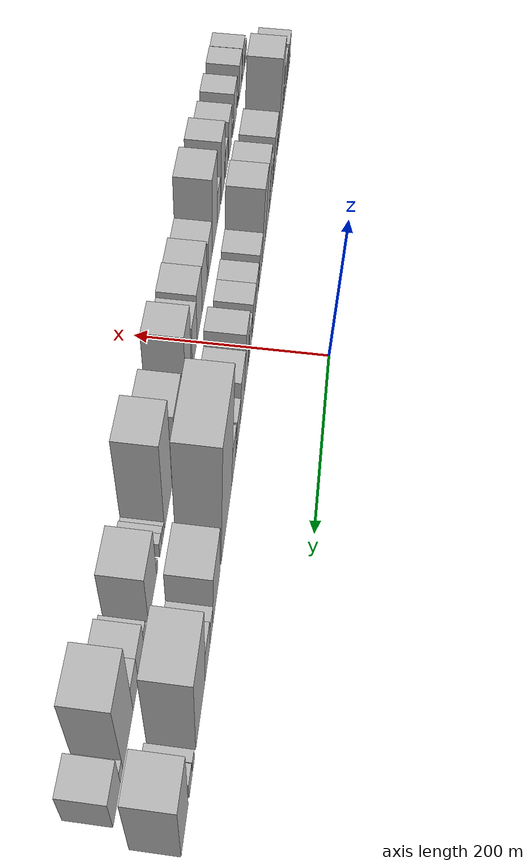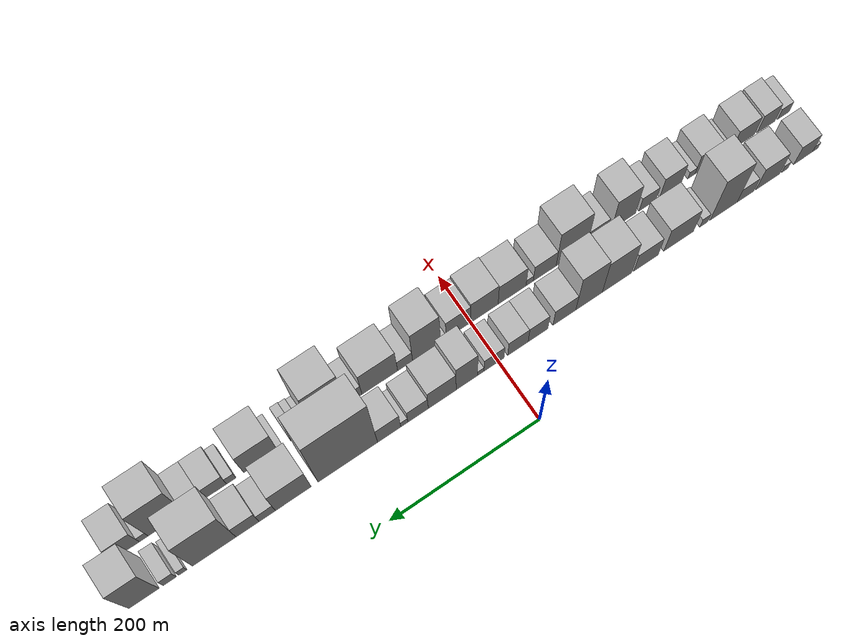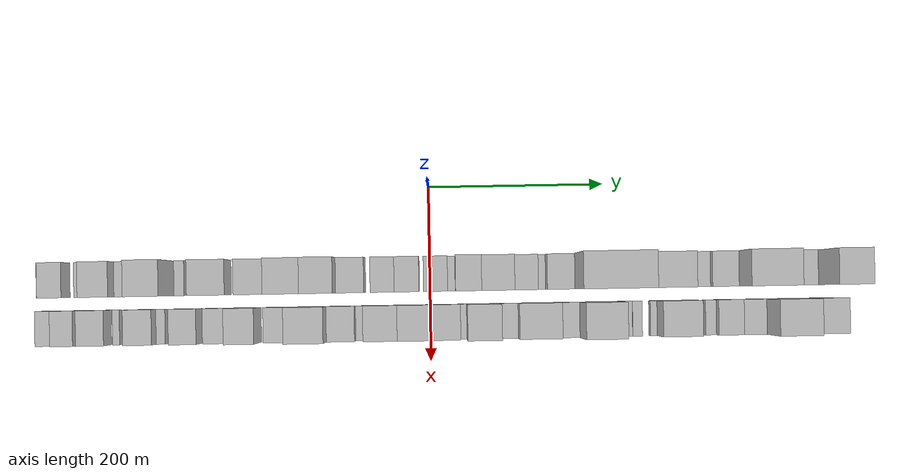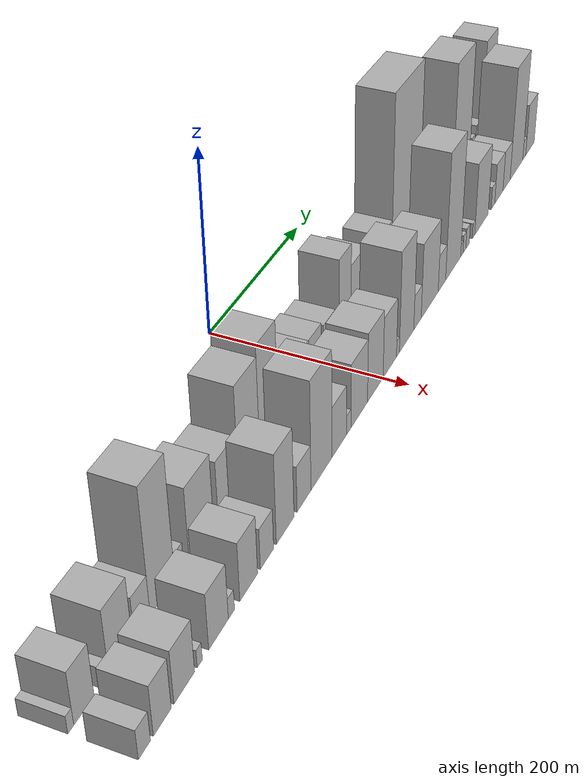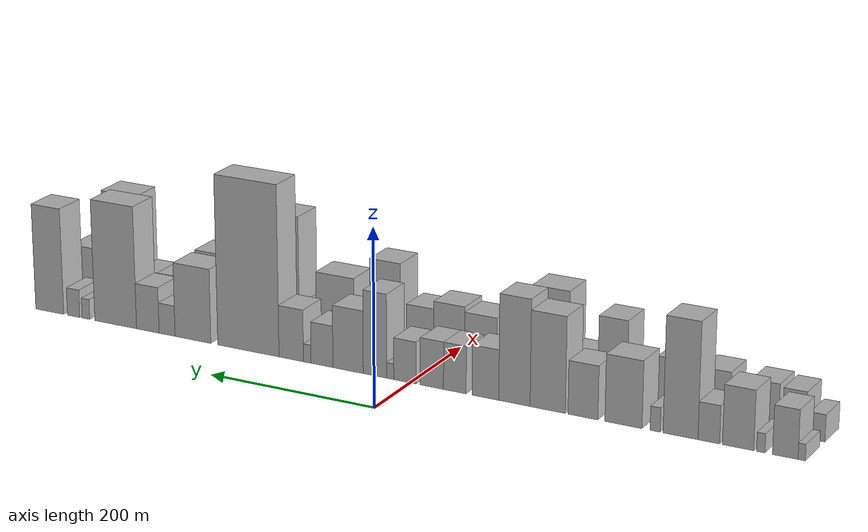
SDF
<sdf version="1.6">
 <world name="default">
  <scene>
   <sky><clouds><speed>12</speed></clouds></sky>
   <ambient>0.4 0.4 0.4 1</ambient>
   <background>0.7 0.7 0.7 1</background>
   <shadows>1</shadows>
  </scene>
  <gravity>0 0 -9.8066</gravity>
  <magnetic_field>6e-06 2.3e-05 -4.2e-05</magnetic_field>
  <physics default="0" name="default_physics" type="ode">
   <ode>
    <solver>
     <type>quick</type>
     <iters>10</iters>
     <sor>1.0</sor>
     <use_dynamic_moi_rescaling>0</use_dynamic_moi_rescaling>
    </solver>
    <constraints>
     <cfm>0</cfm>
     <erp>0.2</erp>
     <contact_max_correcting_vel>100</contact_max_correcting_vel>
     <contact_surface_layer>0.001</contact_surface_layer>
    </constraints>
   </ode>
   <max_step_size>0.004</max_step_size>
   <real_time_factor>1</real_time_factor>
   <real_time_update_rate>250</real_time_update_rate>
  </physics>
  <light name="sun" type="directional">
   <pose>0 0 10 0 0 0</pose>
   <diffuse>0.8 0.8 0.8 1</diffuse>
   <specular>0.2 0.2 0.2 1</specular>
   <attenuation>
    <range>1000</range>
    <constant>0.9</constant>
    <linear>0.01</linear>
    <quadratic>0.001</quadratic>
   </attenuation>
   <direction>-0.5 0.1 -0.9</direction>
  </light>
  <model name="building_1">
   <static>1</static>
   <pose>100.0000 -446.0445 0 0.000000 0.000000 0.000000</pose>
   <link name="link">
    <pose>0 0 9.00 0 0 0</pose>
    <collision name="collision"><geometry><box><size>40.0000 7.9111 18.0000</size></box></geometry></collision>
    <visual name="visual">
     <cast_shadows>0</cast_shadows>
     <geometry><box><size>40.0000 7.9111 18.0000</size></box></geometry>
     <material>
      <script>
       <uri>model://HANNAS_wall/materials/scripts</uri>
       <uri>model://HANNAS_wall/materials/textures</uri>
       <name>vrc/HANNAS_wall</name>
      </script>
     </material>
    </visual>
   </link>
  </model>
  <model name="building_2">
   <static>1</static>
   <pose>100.0000 -428.3742 0 0.000000 0.000000 0.000000</pose>
   <link name="link">
    <pose>0 0 27.00 0 0 0</pose>
    <collision name="collision"><geometry><box><size>40.0000 27.4295 54.0000</size></box></geometry></collision>
    <visual name="visual">
     <cast_shadows>0</cast_shadows>
     <geometry><box><size>40.0000 27.4295 54.0000</size></box></geometry>
     <material>
      <script>
       <uri>model://HANNAS_wall/materials/scripts</uri>
       <uri>model://HANNAS_wall/materials/textures</uri>
       <name>vrc/HANNAS_wall</name>
      </script>
     </material>
    </visual>
   </link>
  </model>
  <model name="building_3">
   <static>1</static>
   <pose>100.0000 -402.0157 0 0.000000 0.000000 0.000000</pose>
   <link name="link">
    <pose>0 0 10.50 0 0 0</pose>
    <collision name="collision"><geometry><box><size>40.0000 9.2875 21.0000</size></box></geometry></collision>
    <visual name="visual">
     <cast_shadows>0</cast_shadows>
     <geometry><box><size>40.0000 9.2875 21.0000</size></box></geometry>
     <material>
      <script>
       <uri>model://HANNAS_wall/materials/scripts</uri>
       <uri>model://HANNAS_wall/materials/textures</uri>
       <name>vrc/HANNAS_wall</name>
      </script>
     </material>
    </visual>
   </link>
  </model>
  <model name="building_4">
   <static>1</static>
   <pose>100.0000 -377.2498 0 0.000000 0.000000 0.000000</pose>
   <link name="link">
    <pose>0 0 33.00 0 0 0</pose>
    <collision name="collision"><geometry><box><size>40.0000 34.2443 66.0000</size></box></geometry></collision>
    <visual name="visual">
     <cast_shadows>0</cast_shadows>
     <geometry><box><size>40.0000 34.2443 66.0000</size></box></geometry>
     <material>
      <script>
       <uri>model://HANNAS_wall/materials/scripts</uri>
       <uri>model://HANNAS_wall/materials/textures</uri>
       <name>vrc/HANNAS_wall</name>
      </script>
     </material>
    </visual>
   </link>
  </model>
  <model name="building_5">
   <static>1</static>
   <pose>100.0000 -345.1877 0 0.000000 0.000000 0.000000</pose>
   <link name="link">
    <pose>0 0 21.00 0 0 0</pose>
    <collision name="collision"><geometry><box><size>40.0000 23.8799 42.0000</size></box></geometry></collision>
    <visual name="visual">
     <cast_shadows>0</cast_shadows>
     <geometry><box><size>40.0000 23.8799 42.0000</size></box></geometry>
     <material>
      <script>
       <uri>model://HANNAS_wall/materials/scripts</uri>
       <uri>model://HANNAS_wall/materials/textures</uri>
       <name>vrc/HANNAS_wall</name>
      </script>
     </material>
    </visual>
   </link>
  </model>
  <model name="building_6">
   <static>1</static>
   <pose>100.0000 -313.8028 0 0.000000 0.000000 0.000000</pose>
   <link name="link">
    <pose>0 0 64.50 0 0 0</pose>
    <collision name="collision"><geometry><box><size>40.0000 38.8897 129.0000</size></box></geometry></collision>
    <visual name="visual">
     <cast_shadows>0</cast_shadows>
     <geometry><box><size>40.0000 38.8897 129.0000</size></box></geometry>
     <material>
      <script>
       <uri>model://HANNAS_wall/materials/scripts</uri>
       <uri>model://HANNAS_wall/materials/textures</uri>
       <name>vrc/HANNAS_wall</name>
      </script>
     </material>
    </visual>
   </link>
  </model>
  <model name="building_7">
   <static>1</static>
   <pose>100.0000 -285.6322 0 0.000000 0.000000 0.000000</pose>
   <link name="link">
    <pose>0 0 13.50 0 0 0</pose>
    <collision name="collision"><geometry><box><size>40.0000 11.4515 27.0000</size></box></geometry></collision>
    <visual name="visual">
     <cast_shadows>0</cast_shadows>
     <geometry><box><size>40.0000 11.4515 27.0000</size></box></geometry>
     <material>
      <script>
       <uri>model://HANNAS_wall/materials/scripts</uri>
       <uri>model://HANNAS_wall/materials/textures</uri>
       <name>vrc/HANNAS_wall</name>
      </script>
     </material>
    </visual>
   </link>
  </model>
  <model name="building_8">
   <static>1</static>
   <pose>100.0000 -249.8917 0 0.000000 0.000000 0.000000</pose>
   <link name="link">
    <pose>0 0 37.50 0 0 0</pose>
    <collision name="collision"><geometry><box><size>40.0000 42.0296 75.0000</size></box></geometry></collision>
    <visual name="visual">
     <cast_shadows>0</cast_shadows>
     <geometry><box><size>40.0000 42.0296 75.0000</size></box></geometry>
     <material>
      <script>
       <uri>model://HANNAS_wall/materials/scripts</uri>
       <uri>model://HANNAS_wall/materials/textures</uri>
       <name>vrc/HANNAS_wall</name>
      </script>
     </material>
    </visual>
   </link>
  </model>
  <model name="building_9">
   <static>1</static>
   <pose>100.0000 -203.7269 0 0.000000 0.000000 0.000000</pose>
   <link name="link">
    <pose>0 0 30.00 0 0 0</pose>
    <collision name="collision"><geometry><box><size>40.0000 34.3001 60.0000</size></box></geometry></collision>
    <visual name="visual">
     <cast_shadows>0</cast_shadows>
     <geometry><box><size>40.0000 34.3001 60.0000</size></box></geometry>
     <material>
      <script>
       <uri>model://HANNAS_wall/materials/scripts</uri>
       <uri>model://HANNAS_wall/materials/textures</uri>
       <name>vrc/HANNAS_wall</name>
      </script>
     </material>
    </visual>
   </link>
  </model>
  <model name="building_10">
   <static>1</static>
   <pose>100.0000 -163.1283 0 0.000000 0.000000 0.000000</pose>
   <link name="link">
    <pose>0 0 54.00 0 0 0</pose>
    <collision name="collision"><geometry><box><size>40.0000 40.8971 108.0000</size></box></geometry></collision>
    <visual name="visual">
     <cast_shadows>0</cast_shadows>
     <geometry><box><size>40.0000 40.8971 108.0000</size></box></geometry>
     <material>
      <script>
       <uri>model://HANNAS_wall/materials/scripts</uri>
       <uri>model://HANNAS_wall/materials/textures</uri>
       <name>vrc/HANNAS_wall</name>
      </script>
     </material>
    </visual>
   </link>
  </model>
  <model name="building_11">
   <static>1</static>
   <pose>100.0000 -124.2831 0 0.000000 0.000000 0.000000</pose>
   <link name="link">
    <pose>0 0 60.00 0 0 0</pose>
    <collision name="collision"><geometry><box><size>40.0000 36.7932 120.0000</size></box></geometry></collision>
    <visual name="visual">
     <cast_shadows>0</cast_shadows>
     <geometry><box><size>40.0000 36.7932 120.0000</size></box></geometry>
     <material>
      <script>
       <uri>model://HANNAS_wall/materials/scripts</uri>
       <uri>model://HANNAS_wall/materials/textures</uri>
       <name>vrc/HANNAS_wall</name>
      </script>
     </material>
    </visual>
   </link>
  </model>
  <model name="building_12">
   <static>1</static>
   <pose>100.0000 -90.0963 0 0.000000 0.000000 0.000000</pose>
   <link name="link">
    <pose>0 0 28.50 0 0 0</pose>
    <collision name="collision"><geometry><box><size>40.0000 31.5804 57.0000</size></box></geometry></collision>
    <visual name="visual">
     <cast_shadows>0</cast_shadows>
     <geometry><box><size>40.0000 31.5804 57.0000</size></box></geometry>
     <material>
      <script>
       <uri>model://HANNAS_wall/materials/scripts</uri>
       <uri>model://HANNAS_wall/materials/textures</uri>
       <name>vrc/HANNAS_wall</name>
      </script>
     </material>
    </visual>
   </link>
  </model>
  <model name="building_13">
   <static>1</static>
   <pose>100.0000 -53.7954 0 0.000000 0.000000 0.000000</pose>
   <link name="link">
    <pose>0 0 27.00 0 0 0</pose>
    <collision name="collision"><geometry><box><size>40.0000 27.0213 54.0000</size></box></geometry></collision>
    <visual name="visual">
     <cast_shadows>0</cast_shadows>
     <geometry><box><size>40.0000 27.0213 54.0000</size></box></geometry>
     <material>
      <script>
       <uri>model://HANNAS_wall/materials/scripts</uri>
       <uri>model://HANNAS_wall/materials/textures</uri>
       <name>vrc/HANNAS_wall</name>
      </script>
     </material>
    </visual>
   </link>
  </model>
  <model name="building_14">
   <static>1</static>
   <pose>100.0000 -26.3035 0 0.000000 0.000000 0.000000</pose>
   <link name="link">
    <pose>0 0 27.00 0 0 0</pose>
    <collision name="collision"><geometry><box><size>40.0000 27.9625 54.0000</size></box></geometry></collision>
    <visual name="visual">
     <cast_shadows>0</cast_shadows>
     <geometry><box><size>40.0000 27.9625 54.0000</size></box></geometry>
     <material>
      <script>
       <uri>model://HANNAS_wall/materials/scripts</uri>
       <uri>model://HANNAS_wall/materials/textures</uri>
       <name>vrc/HANNAS_wall</name>
      </script>
     </material>
    </visual>
   </link>
  </model>
  <model name="building_15">
   <static>1</static>
   <pose>100.0000 6.3025 0 0.000000 0.000000 0.000000</pose>
   <link name="link">
    <pose>0 0 24.00 0 0 0</pose>
    <collision name="collision"><geometry><box><size>40.0000 27.2494 48.0000</size></box></geometry></collision>
    <visual name="visual">
     <cast_shadows>0</cast_shadows>
     <geometry><box><size>40.0000 27.2494 48.0000</size></box></geometry>
     <material>
      <script>
       <uri>model://HANNAS_wall/materials/scripts</uri>
       <uri>model://HANNAS_wall/materials/textures</uri>
       <name>vrc/HANNAS_wall</name>
      </script>
     </material>
    </visual>
   </link>
  </model>
  <model name="building_16">
   <static>1</static>
   <pose>100.0000 24.2655 0 0.000000 0.000000 0.000000</pose>
   <link name="link">
    <pose>0 0 9.00 0 0 0</pose>
    <collision name="collision"><geometry><box><size>40.0000 8.6766 18.0000</size></box></geometry></collision>
    <visual name="visual">
     <cast_shadows>0</cast_shadows>
     <geometry><box><size>40.0000 8.6766 18.0000</size></box></geometry>
     <material>
      <script>
       <uri>model://HANNAS_wall/materials/scripts</uri>
       <uri>model://HANNAS_wall/materials/textures</uri>
       <name>vrc/HANNAS_wall</name>
      </script>
     </material>
    </visual>
   </link>
  </model>
  <model name="building_17">
   <static>1</static>
   <pose>100.0000 43.0093 0 0.000000 0.000000 0.000000</pose>
   <link name="link">
    <pose>0 0 48.00 0 0 0</pose>
    <collision name="collision"><geometry><box><size>40.0000 28.8110 96.0000</size></box></geometry></collision>
    <visual name="visual">
     <cast_shadows>0</cast_shadows>
     <geometry><box><size>40.0000 28.8110 96.0000</size></box></geometry>
     <material>
      <script>
       <uri>model://HANNAS_wall/materials/scripts</uri>
       <uri>model://HANNAS_wall/materials/textures</uri>
       <name>vrc/HANNAS_wall</name>
      </script>
     </material>
    </visual>
   </link>
  </model>
  <model name="building_18">
   <static>1</static>
   <pose>100.0000 76.1650 0 0.000000 0.000000 0.000000</pose>
   <link name="link">
    <pose>0 0 36.00 0 0 0</pose>
    <collision name="collision"><geometry><box><size>40.0000 37.5004 72.0000</size></box></geometry></collision>
    <visual name="visual">
     <cast_shadows>0</cast_shadows>
     <geometry><box><size>40.0000 37.5004 72.0000</size></box></geometry>
     <material>
      <script>
       <uri>model://HANNAS_wall/materials/scripts</uri>
       <uri>model://HANNAS_wall/materials/textures</uri>
       <name>vrc/HANNAS_wall</name>
      </script>
     </material>
    </visual>
   </link>
  </model>
  <model name="building_19">
   <static>1</static>
   <pose>100.0000 108.5897 0 0.000000 0.000000 0.000000</pose>
   <link name="link">
    <pose>0 0 24.00 0 0 0</pose>
    <collision name="collision"><geometry><box><size>40.0000 27.3489 48.0000</size></box></geometry></collision>
    <visual name="visual">
     <cast_shadows>0</cast_shadows>
     <geometry><box><size>40.0000 27.3489 48.0000</size></box></geometry>
     <material>
      <script>
       <uri>model://HANNAS_wall/materials/scripts</uri>
       <uri>model://HANNAS_wall/materials/textures</uri>
       <name>vrc/HANNAS_wall</name>
      </script>
     </material>
    </visual>
   </link>
  </model>
  <model name="building_20">
   <static>1</static>
   <pose>100.0000 126.9915 0 0.000000 0.000000 0.000000</pose>
   <link name="link">
    <pose>0 0 10.50 0 0 0</pose>
    <collision name="collision"><geometry><box><size>40.0000 9.4548 21.0000</size></box></geometry></collision>
    <visual name="visual">
     <cast_shadows>0</cast_shadows>
     <geometry><box><size>40.0000 9.4548 21.0000</size></box></geometry>
     <material>
      <script>
       <uri>model://HANNAS_wall/materials/scripts</uri>
       <uri>model://HANNAS_wall/materials/textures</uri>
       <name>vrc/HANNAS_wall</name>
      </script>
     </material>
    </visual>
   </link>
  </model>
  <model name="building_21">
   <static>1</static>
   <pose>100.0000 147.1534 0 0.000000 0.000000 0.000000</pose>
   <link name="link">
    <pose>0 0 30.00 0 0 0</pose>
    <collision name="collision"><geometry><box><size>40.0000 30.8690 60.0000</size></box></geometry></collision>
    <visual name="visual">
     <cast_shadows>0</cast_shadows>
     <geometry><box><size>40.0000 30.8690 60.0000</size></box></geometry>
     <material>
      <script>
       <uri>model://HANNAS_wall/materials/scripts</uri>
       <uri>model://HANNAS_wall/materials/textures</uri>
       <name>vrc/HANNAS_wall</name>
      </script>
     </material>
    </visual>
   </link>
  </model>
  <model name="building_22">
   <static>1</static>
   <pose>100.0000 201.8062 0 0.000000 0.000000 0.000000</pose>
   <link name="link">
    <pose>0 0 99.00 0 0 0</pose>
    <collision name="collision"><geometry><box><size>40.0000 78.4366 198.0000</size></box></geometry></collision>
    <visual name="visual">
     <cast_shadows>0</cast_shadows>
     <geometry><box><size>40.0000 78.4366 198.0000</size></box></geometry>
     <material>
      <script>
       <uri>model://HANNAS_wall/materials/scripts</uri>
       <uri>model://HANNAS_wall/materials/textures</uri>
       <name>vrc/HANNAS_wall</name>
      </script>
     </material>
    </visual>
   </link>
  </model>
  <model name="building_23">
   <static>1</static>
   <pose>100.0000 273.3668 0 0.000000 0.000000 0.000000</pose>
   <link name="link">
    <pose>0 0 43.50 0 0 0</pose>
    <collision name="collision"><geometry><box><size>40.0000 46.6846 87.0000</size></box></geometry></collision>
    <visual name="visual">
     <cast_shadows>0</cast_shadows>
     <geometry><box><size>40.0000 46.6846 87.0000</size></box></geometry>
     <material>
      <script>
       <uri>model://HANNAS_wall/materials/scripts</uri>
       <uri>model://HANNAS_wall/materials/textures</uri>
       <name>vrc/HANNAS_wall</name>
      </script>
     </material>
    </visual>
   </link>
  </model>
  <model name="building_24">
   <static>1</static>
   <pose>100.0000 307.2393 0 0.000000 0.000000 0.000000</pose>
   <link name="link">
    <pose>0 0 18.00 0 0 0</pose>
    <collision name="collision"><geometry><box><size>40.0000 21.0604 36.0000</size></box></geometry></collision>
    <visual name="visual">
     <cast_shadows>0</cast_shadows>
     <geometry><box><size>40.0000 21.0604 36.0000</size></box></geometry>
     <material>
      <script>
       <uri>model://HANNAS_wall/materials/scripts</uri>
       <uri>model://HANNAS_wall/materials/textures</uri>
       <name>vrc/HANNAS_wall</name>
      </script>
     </material>
    </visual>
   </link>
  </model>
  <model name="building_25">
   <static>1</static>
   <pose>100.0000 332.6892 0 0.000000 0.000000 0.000000</pose>
   <link name="link">
    <pose>0 0 27.00 0 0 0</pose>
    <collision name="collision"><geometry><box><size>40.0000 29.8393 54.0000</size></box></geometry></collision>
    <visual name="visual">
     <cast_shadows>0</cast_shadows>
     <geometry><box><size>40.0000 29.8393 54.0000</size></box></geometry>
     <material>
      <script>
       <uri>model://HANNAS_wall/materials/scripts</uri>
       <uri>model://HANNAS_wall/materials/textures</uri>
       <name>vrc/HANNAS_wall</name>
      </script>
     </material>
    </visual>
   </link>
  </model>
  <model name="building_26">
   <static>1</static>
   <pose>100.0000 375.5573 0 0.000000 0.000000 0.000000</pose>
   <link name="link">
    <pose>0 0 72.00 0 0 0</pose>
    <collision name="collision"><geometry><box><size>40.0000 55.8970 144.0000</size></box></geometry></collision>
    <visual name="visual">
     <cast_shadows>0</cast_shadows>
     <geometry><box><size>40.0000 55.8970 144.0000</size></box></geometry>
     <material>
      <script>
       <uri>model://HANNAS_wall/materials/scripts</uri>
       <uri>model://HANNAS_wall/materials/textures</uri>
       <name>vrc/HANNAS_wall</name>
      </script>
     </material>
    </visual>
   </link>
  </model>
  <model name="building_27">
   <static>1</static>
   <pose>100.0000 415.6739 0 0.000000 0.000000 0.000000</pose>
   <link name="link">
    <pose>0 0 12.00 0 0 0</pose>
    <collision name="collision"><geometry><box><size>40.0000 10.3362 24.0000</size></box></geometry></collision>
    <visual name="visual">
     <cast_shadows>0</cast_shadows>
     <geometry><box><size>40.0000 10.3362 24.0000</size></box></geometry>
     <material>
      <script>
       <uri>model://HANNAS_wall/materials/scripts</uri>
       <uri>model://HANNAS_wall/materials/textures</uri>
       <name>vrc/HANNAS_wall</name>
      </script>
     </material>
    </visual>
   </link>
  </model>
  <model name="building_28">
   <static>1</static>
   <pose>100.0000 432.2948 0 0.000000 0.000000 0.000000</pose>
   <link name="link">
    <pose>0 0 16.50 0 0 0</pose>
    <collision name="collision"><geometry><box><size>40.0000 16.9056 33.0000</size></box></geometry></collision>
    <visual name="visual">
     <cast_shadows>0</cast_shadows>
     <geometry><box><size>40.0000 16.9056 33.0000</size></box></geometry>
     <material>
      <script>
       <uri>model://HANNAS_wall/materials/scripts</uri>
       <uri>model://HANNAS_wall/materials/textures</uri>
       <name>vrc/HANNAS_wall</name>
      </script>
     </material>
    </visual>
   </link>
  </model>
  <model name="building_29">
   <static>1</static>
   <pose>100.0000 464.8829 0 0.000000 0.000000 0.000000</pose>
   <link name="link">
    <pose>0 0 63.00 0 0 0</pose>
    <collision name="collision"><geometry><box><size>40.0000 38.2706 126.0000</size></box></geometry></collision>
    <visual name="visual">
     <cast_shadows>0</cast_shadows>
     <geometry><box><size>40.0000 38.2706 126.0000</size></box></geometry>
     <material>
      <script>
       <uri>model://HANNAS_wall/materials/scripts</uri>
       <uri>model://HANNAS_wall/materials/textures</uri>
       <name>vrc/HANNAS_wall</name>
      </script>
     </material>
    </visual>
   </link>
  </model>
  <model name="building_30">
   <static>1</static>
   <pose>155.0000 -441.4879 0 0.000000 0.000000 0.000000</pose>
   <link name="link">
    <pose>0 0 15.00 0 0 0</pose>
    <collision name="collision"><geometry><box><size>40.0000 17.0242 30.0000</size></box></geometry></collision>
    <visual name="visual">
     <cast_shadows>0</cast_shadows>
     <geometry><box><size>40.0000 17.0242 30.0000</size></box></geometry>
     <material>
      <script>
       <uri>model://HANNAS_wall/materials/scripts</uri>
       <uri>model://HANNAS_wall/materials/textures</uri>
       <name>vrc/HANNAS_wall</name>
      </script>
     </material>
    </visual>
   </link>
  </model>
  <model name="building_31">
   <static>1</static>
   <pose>155.0000 -416.0695 0 0.000000 0.000000 0.000000</pose>
   <link name="link">
    <pose>0 0 25.50 0 0 0</pose>
    <collision name="collision"><geometry><box><size>40.0000 25.8125 51.0000</size></box></geometry></collision>
    <visual name="visual">
     <cast_shadows>0</cast_shadows>
     <geometry><box><size>40.0000 25.8125 51.0000</size></box></geometry>
     <material>
      <script>
       <uri>model://HANNAS_wall/materials/scripts</uri>
       <uri>model://HANNAS_wall/materials/textures</uri>
       <name>vrc/HANNAS_wall</name>
      </script>
     </material>
    </visual>
   </link>
  </model>
  <model name="building_32">
   <static>1</static>
   <pose>155.0000 -383.4789 0 0.000000 0.000000 0.000000</pose>
   <link name="link">
    <pose>0 0 27.00 0 0 0</pose>
    <collision name="collision"><geometry><box><size>40.0000 31.3688 54.0000</size></box></geometry></collision>
    <visual name="visual">
     <cast_shadows>0</cast_shadows>
     <geometry><box><size>40.0000 31.3688 54.0000</size></box></geometry>
     <material>
      <script>
       <uri>model://HANNAS_wall/materials/scripts</uri>
       <uri>model://HANNAS_wall/materials/textures</uri>
       <name>vrc/HANNAS_wall</name>
      </script>
     </material>
    </visual>
   </link>
  </model>
  <model name="building_33">
   <static>1</static>
   <pose>155.0000 -359.7463 0 0.000000 0.000000 0.000000</pose>
   <link name="link">
    <pose>0 0 9.00 0 0 0</pose>
    <collision name="collision"><geometry><box><size>40.0000 8.0962 18.0000</size></box></geometry></collision>
    <visual name="visual">
     <cast_shadows>0</cast_shadows>
     <geometry><box><size>40.0000 8.0962 18.0000</size></box></geometry>
     <material>
      <script>
       <uri>model://HANNAS_wall/materials/scripts</uri>
       <uri>model://HANNAS_wall/materials/textures</uri>
       <name>vrc/HANNAS_wall</name>
      </script>
     </material>
    </visual>
   </link>
  </model>
  <model name="building_34">
   <static>1</static>
   <pose>155.0000 -329.5997 0 0.000000 0.000000 0.000000</pose>
   <link name="link">
    <pose>0 0 28.50 0 0 0</pose>
    <collision name="collision"><geometry><box><size>40.0000 32.1970 57.0000</size></box></geometry></collision>
    <visual name="visual">
     <cast_shadows>0</cast_shadows>
     <geometry><box><size>40.0000 32.1970 57.0000</size></box></geometry>
     <material>
      <script>
       <uri>model://HANNAS_wall/materials/scripts</uri>
       <uri>model://HANNAS_wall/materials/textures</uri>
       <name>vrc/HANNAS_wall</name>
      </script>
     </material>
    </visual>
   </link>
  </model>
  <model name="building_35">
   <static>1</static>
   <pose>155.0000 -308.3166 0 0.000000 0.000000 0.000000</pose>
   <link name="link">
    <pose>0 0 10.50 0 0 0</pose>
    <collision name="collision"><geometry><box><size>40.0000 10.3693 21.0000</size></box></geometry></collision>
    <visual name="visual">
     <cast_shadows>0</cast_shadows>
     <geometry><box><size>40.0000 10.3693 21.0000</size></box></geometry>
     <material>
      <script>
       <uri>model://HANNAS_wall/materials/scripts</uri>
       <uri>model://HANNAS_wall/materials/textures</uri>
       <name>vrc/HANNAS_wall</name>
      </script>
     </material>
    </visual>
   </link>
  </model>
  <model name="building_36">
   <static>1</static>
   <pose>155.0000 -278.6111 0 0.000000 0.000000 0.000000</pose>
   <link name="link">
    <pose>0 0 30.00 0 0 0</pose>
    <collision name="collision"><geometry><box><size>40.0000 31.0417 60.0000</size></box></geometry></collision>
    <visual name="visual">
     <cast_shadows>0</cast_shadows>
     <geometry><box><size>40.0000 31.0417 60.0000</size></box></geometry>
     <material>
      <script>
       <uri>model://HANNAS_wall/materials/scripts</uri>
       <uri>model://HANNAS_wall/materials/textures</uri>
       <name>vrc/HANNAS_wall</name>
      </script>
     </material>
    </visual>
   </link>
  </model>
  <model name="building_37">
   <static>1</static>
   <pose>155.0000 -245.9756 0 0.000000 0.000000 0.000000</pose>
   <link name="link">
    <pose>0 0 21.00 0 0 0</pose>
    <collision name="collision"><geometry><box><size>40.0000 24.2291 42.0000</size></box></geometry></collision>
    <visual name="visual">
     <cast_shadows>0</cast_shadows>
     <geometry><box><size>40.0000 24.2291 42.0000</size></box></geometry>
     <material>
      <script>
       <uri>model://HANNAS_wall/materials/scripts</uri>
       <uri>model://HANNAS_wall/materials/textures</uri>
       <name>vrc/HANNAS_wall</name>
      </script>
     </material>
    </visual>
   </link>
  </model>
  <model name="building_38">
   <static>1</static>
   <pose>155.0000 -211.9666 0 0.000000 0.000000 0.000000</pose>
   <link name="link">
    <pose>0 0 46.50 0 0 0</pose>
    <collision name="collision"><geometry><box><size>40.0000 33.7891 93.0000</size></box></geometry></collision>
    <visual name="visual">
     <cast_shadows>0</cast_shadows>
     <geometry><box><size>40.0000 33.7891 93.0000</size></box></geometry>
     <material>
      <script>
       <uri>model://HANNAS_wall/materials/scripts</uri>
       <uri>model://HANNAS_wall/materials/textures</uri>
       <name>vrc/HANNAS_wall</name>
      </script>
     </material>
    </visual>
   </link>
  </model>
  <model name="building_39">
   <static>1</static>
   <pose>155.0000 -175.0666 0 0.000000 0.000000 0.000000</pose>
   <link name="link">
    <pose>0 0 24.00 0 0 0</pose>
    <collision name="collision"><geometry><box><size>40.0000 28.0108 48.0000</size></box></geometry></collision>
    <visual name="visual">
     <cast_shadows>0</cast_shadows>
     <geometry><box><size>40.0000 28.0108 48.0000</size></box></geometry>
     <material>
      <script>
       <uri>model://HANNAS_wall/materials/scripts</uri>
       <uri>model://HANNAS_wall/materials/textures</uri>
       <name>vrc/HANNAS_wall</name>
      </script>
     </material>
    </visual>
   </link>
  </model>
  <model name="building_40">
   <static>1</static>
   <pose>155.0000 -139.2162 0 0.000000 0.000000 0.000000</pose>
   <link name="link">
    <pose>0 0 57.00 0 0 0</pose>
    <collision name="collision"><geometry><box><size>40.0000 43.6900 114.0000</size></box></geometry></collision>
    <visual name="visual">
     <cast_shadows>0</cast_shadows>
     <geometry><box><size>40.0000 43.6900 114.0000</size></box></geometry>
     <material>
      <script>
       <uri>model://HANNAS_wall/materials/scripts</uri>
       <uri>model://HANNAS_wall/materials/textures</uri>
       <name>vrc/HANNAS_wall</name>
      </script>
     </material>
    </visual>
   </link>
  </model>
  <model name="building_41">
   <static>1</static>
   <pose>155.0000 -101.5321 0 0.000000 0.000000 0.000000</pose>
   <link name="link">
    <pose>0 0 27.00 0 0 0</pose>
    <collision name="collision"><geometry><box><size>40.0000 31.6781 54.0000</size></box></geometry></collision>
    <visual name="visual">
     <cast_shadows>0</cast_shadows>
     <geometry><box><size>40.0000 31.6781 54.0000</size></box></geometry>
     <material>
      <script>
       <uri>model://HANNAS_wall/materials/scripts</uri>
       <uri>model://HANNAS_wall/materials/textures</uri>
       <name>vrc/HANNAS_wall</name>
      </script>
     </material>
    </visual>
   </link>
  </model>
  <model name="building_42">
   <static>1</static>
   <pose>155.0000 -80.7195 0 0.000000 0.000000 0.000000</pose>
   <link name="link">
    <pose>0 0 10.50 0 0 0</pose>
    <collision name="collision"><geometry><box><size>40.0000 9.9471 21.0000</size></box></geometry></collision>
    <visual name="visual">
     <cast_shadows>0</cast_shadows>
     <geometry><box><size>40.0000 9.9471 21.0000</size></box></geometry>
     <material>
      <script>
       <uri>model://HANNAS_wall/materials/scripts</uri>
       <uri>model://HANNAS_wall/materials/textures</uri>
       <name>vrc/HANNAS_wall</name>
      </script>
     </material>
    </visual>
   </link>
  </model>
  <model name="building_43">
   <static>1</static>
   <pose>155.0000 -56.5079 0 0.000000 0.000000 0.000000</pose>
   <link name="link">
    <pose>0 0 34.50 0 0 0</pose>
    <collision name="collision"><geometry><box><size>40.0000 38.4760 69.0000</size></box></geometry></collision>
    <visual name="visual">
     <cast_shadows>0</cast_shadows>
     <geometry><box><size>40.0000 38.4760 69.0000</size></box></geometry>
     <material>
      <script>
       <uri>model://HANNAS_wall/materials/scripts</uri>
       <uri>model://HANNAS_wall/materials/textures</uri>
       <name>vrc/HANNAS_wall</name>
      </script>
     </material>
    </visual>
   </link>
  </model>
  <model name="building_44">
   <static>1</static>
   <pose>155.0000 -18.4559 0 0.000000 0.000000 0.000000</pose>
   <link name="link">
    <pose>0 0 37.50 0 0 0</pose>
    <collision name="collision"><geometry><box><size>40.0000 37.6281 75.0000</size></box></geometry></collision>
    <visual name="visual">
     <cast_shadows>0</cast_shadows>
     <geometry><box><size>40.0000 37.6281 75.0000</size></box></geometry>
     <material>
      <script>
       <uri>model://HANNAS_wall/materials/scripts</uri>
       <uri>model://HANNAS_wall/materials/textures</uri>
       <name>vrc/HANNAS_wall</name>
      </script>
     </material>
    </visual>
   </link>
  </model>
  <model name="building_45">
   <static>1</static>
   <pose>155.0000 17.0346 0 0.000000 0.000000 0.000000</pose>
   <link name="link">
    <pose>0 0 33.00 0 0 0</pose>
    <collision name="collision"><geometry><box><size>40.0000 33.3527 66.0000</size></box></geometry></collision>
    <visual name="visual">
     <cast_shadows>0</cast_shadows>
     <geometry><box><size>40.0000 33.3527 66.0000</size></box></geometry>
     <material>
      <script>
       <uri>model://HANNAS_wall/materials/scripts</uri>
       <uri>model://HANNAS_wall/materials/textures</uri>
       <name>vrc/HANNAS_wall</name>
      </script>
     </material>
    </visual>
   </link>
  </model>
  <model name="building_46">
   <static>1</static>
   <pose>155.0000 37.4321 0 0.000000 0.000000 0.000000</pose>
   <link name="link">
    <pose>0 0 9.00 0 0 0</pose>
    <collision name="collision"><geometry><box><size>40.0000 7.4423 18.0000</size></box></geometry></collision>
    <visual name="visual">
     <cast_shadows>0</cast_shadows>
     <geometry><box><size>40.0000 7.4423 18.0000</size></box></geometry>
     <material>
      <script>
       <uri>model://HANNAS_wall/materials/scripts</uri>
       <uri>model://HANNAS_wall/materials/textures</uri>
       <name>vrc/HANNAS_wall</name>
      </script>
     </material>
    </visual>
   </link>
  </model>
  <model name="building_47">
   <static>1</static>
   <pose>155.0000 60.0776 0 0.000000 0.000000 0.000000</pose>
   <link name="link">
    <pose>0 0 55.50 0 0 0</pose>
    <collision name="collision"><geometry><box><size>40.0000 37.8486 111.0000</size></box></geometry></collision>
    <visual name="visual">
     <cast_shadows>0</cast_shadows>
     <geometry><box><size>40.0000 37.8486 111.0000</size></box></geometry>
     <material>
      <script>
       <uri>model://HANNAS_wall/materials/scripts</uri>
       <uri>model://HANNAS_wall/materials/textures</uri>
       <name>vrc/HANNAS_wall</name>
      </script>
     </material>
    </visual>
   </link>
  </model>
  <model name="building_48">
   <static>1</static>
   <pose>155.0000 89.0997 0 0.000000 0.000000 0.000000</pose>
   <link name="link">
    <pose>0 0 19.50 0 0 0</pose>
    <collision name="collision"><geometry><box><size>40.0000 20.1956 39.0000</size></box></geometry></collision>
    <visual name="visual">
     <cast_shadows>0</cast_shadows>
     <geometry><box><size>40.0000 20.1956 39.0000</size></box></geometry>
     <material>
      <script>
       <uri>model://HANNAS_wall/materials/scripts</uri>
       <uri>model://HANNAS_wall/materials/textures</uri>
       <name>vrc/HANNAS_wall</name>
      </script>
     </material>
    </visual>
   </link>
  </model>
  <model name="building_49">
   <static>1</static>
   <pose>155.0000 123.0417 0 0.000000 0.000000 0.000000</pose>
   <link name="link">
    <pose>0 0 42.00 0 0 0</pose>
    <collision name="collision"><geometry><box><size>40.0000 47.6884 84.0000</size></box></geometry></collision>
    <visual name="visual">
     <cast_shadows>0</cast_shadows>
     <geometry><box><size>40.0000 47.6884 84.0000</size></box></geometry>
     <material>
      <script>
       <uri>model://HANNAS_wall/materials/scripts</uri>
       <uri>model://HANNAS_wall/materials/textures</uri>
       <name>vrc/HANNAS_wall</name>
      </script>
     </material>
    </visual>
   </link>
  </model>
  <model name="building_50">
   <static>1</static>
   <pose>155.0000 157.7410 0 0.000000 0.000000 0.000000</pose>
   <link name="link">
    <pose>0 0 21.00 0 0 0</pose>
    <collision name="collision"><geometry><box><size>40.0000 21.7101 42.0000</size></box></geometry></collision>
    <visual name="visual">
     <cast_shadows>0</cast_shadows>
     <geometry><box><size>40.0000 21.7101 42.0000</size></box></geometry>
     <material>
      <script>
       <uri>model://HANNAS_wall/materials/scripts</uri>
       <uri>model://HANNAS_wall/materials/textures</uri>
       <name>vrc/HANNAS_wall</name>
      </script>
     </material>
    </visual>
   </link>
  </model>
  <model name="building_51">
   <static>1</static>
   <pose>155.0000 191.2912 0 0.000000 0.000000 0.000000</pose>
   <link name="link">
    <pose>0 0 72.00 0 0 0</pose>
    <collision name="collision"><geometry><box><size>40.0000 45.3903 144.0000</size></box></geometry></collision>
    <visual name="visual">
     <cast_shadows>0</cast_shadows>
     <geometry><box><size>40.0000 45.3903 144.0000</size></box></geometry>
     <material>
      <script>
       <uri>model://HANNAS_wall/materials/scripts</uri>
       <uri>model://HANNAS_wall/materials/textures</uri>
       <name>vrc/HANNAS_wall</name>
      </script>
     </material>
    </visual>
   </link>
  </model>
  <model name="building_52">
   <static>1</static>
   <pose>155.0000 217.5734 0 0.000000 0.000000 0.000000</pose>
   <link name="link">
    <pose>0 0 7.50 0 0 0</pose>
    <collision name="collision"><geometry><box><size>40.0000 7.1741 15.0000</size></box></geometry></collision>
    <visual name="visual">
     <cast_shadows>0</cast_shadows>
     <geometry><box><size>40.0000 7.1741 15.0000</size></box></geometry>
     <material>
      <script>
       <uri>model://HANNAS_wall/materials/scripts</uri>
       <uri>model://HANNAS_wall/materials/textures</uri>
       <name>vrc/HANNAS_wall</name>
      </script>
     </material>
    </visual>
   </link>
  </model>
  <model name="building_53">
   <static>1</static>
   <pose>155.0000 225.6127 0 0.000000 0.000000 0.000000</pose>
   <link name="link">
    <pose>0 0 10.50 0 0 0</pose>
    <collision name="collision"><geometry><box><size>40.0000 8.9045 21.0000</size></box></geometry></collision>
    <visual name="visual">
     <cast_shadows>0</cast_shadows>
     <geometry><box><size>40.0000 8.9045 21.0000</size></box></geometry>
     <material>
      <script>
       <uri>model://HANNAS_wall/materials/scripts</uri>
       <uri>model://HANNAS_wall/materials/textures</uri>
       <name>vrc/HANNAS_wall</name>
      </script>
     </material>
    </visual>
   </link>
  </model>
  <model name="building_54">
   <static>1</static>
   <pose>155.0000 235.5404 0 0.000000 0.000000 0.000000</pose>
   <link name="link">
    <pose>0 0 12.00 0 0 0</pose>
    <collision name="collision"><geometry><box><size>40.0000 10.9510 24.0000</size></box></geometry></collision>
    <visual name="visual">
     <cast_shadows>0</cast_shadows>
     <geometry><box><size>40.0000 10.9510 24.0000</size></box></geometry>
     <material>
      <script>
       <uri>model://HANNAS_wall/materials/scripts</uri>
       <uri>model://HANNAS_wall/materials/textures</uri>
       <name>vrc/HANNAS_wall</name>
      </script>
     </material>
    </visual>
   </link>
  </model>
  <model name="building_55">
   <static>1</static>
   <pose>155.0000 254.7776 0 0.000000 0.000000 0.000000</pose>
   <link name="link">
    <pose>0 0 9.00 0 0 0</pose>
    <collision name="collision"><geometry><box><size>40.0000 7.5234 18.0000</size></box></geometry></collision>
    <visual name="visual">
     <cast_shadows>0</cast_shadows>
     <geometry><box><size>40.0000 7.5234 18.0000</size></box></geometry>
     <material>
      <script>
       <uri>model://HANNAS_wall/materials/scripts</uri>
       <uri>model://HANNAS_wall/materials/textures</uri>
       <name>vrc/HANNAS_wall</name>
      </script>
     </material>
    </visual>
   </link>
  </model>
  <model name="building_56">
   <static>1</static>
   <pose>155.0000 280.6615 0 0.000000 0.000000 0.000000</pose>
   <link name="link">
    <pose>0 0 42.00 0 0 0</pose>
    <collision name="collision"><geometry><box><size>40.0000 44.2444 84.0000</size></box></geometry></collision>
    <visual name="visual">
     <cast_shadows>0</cast_shadows>
     <geometry><box><size>40.0000 44.2444 84.0000</size></box></geometry>
     <material>
      <script>
       <uri>model://HANNAS_wall/materials/scripts</uri>
       <uri>model://HANNAS_wall/materials/textures</uri>
       <name>vrc/HANNAS_wall</name>
      </script>
     </material>
    </visual>
   </link>
  </model>
  <model name="building_57">
   <static>1</static>
   <pose>155.0000 318.8714 0 0.000000 0.000000 0.000000</pose>
   <link name="link">
    <pose>0 0 13.50 0 0 0</pose>
    <collision name="collision"><geometry><box><size>40.0000 12.1755 27.0000</size></box></geometry></collision>
    <visual name="visual">
     <cast_shadows>0</cast_shadows>
     <geometry><box><size>40.0000 12.1755 27.0000</size></box></geometry>
     <material>
      <script>
       <uri>model://HANNAS_wall/materials/scripts</uri>
       <uri>model://HANNAS_wall/materials/textures</uri>
       <name>vrc/HANNAS_wall</name>
      </script>
     </material>
    </visual>
   </link>
  </model>
  <model name="building_58">
   <static>1</static>
   <pose>155.0000 339.3292 0 0.000000 0.000000 0.000000</pose>
   <link name="link">
    <pose>0 0 24.00 0 0 0</pose>
    <collision name="collision"><geometry><box><size>40.0000 28.7402 48.0000</size></box></geometry></collision>
    <visual name="visual">
     <cast_shadows>0</cast_shadows>
     <geometry><box><size>40.0000 28.7402 48.0000</size></box></geometry>
     <material>
      <script>
       <uri>model://HANNAS_wall/materials/scripts</uri>
       <uri>model://HANNAS_wall/materials/textures</uri>
       <name>vrc/HANNAS_wall</name>
      </script>
     </material>
    </visual>
   </link>
  </model>
  <model name="building_59">
   <static>1</static>
   <pose>155.0000 366.4249 0 0.000000 0.000000 0.000000</pose>
   <link name="link">
    <pose>0 0 24.00 0 0 0</pose>
    <collision name="collision"><geometry><box><size>40.0000 25.4513 48.0000</size></box></geometry></collision>
    <visual name="visual">
     <cast_shadows>0</cast_shadows>
     <geometry><box><size>40.0000 25.4513 48.0000</size></box></geometry>
     <material>
      <script>
       <uri>model://HANNAS_wall/materials/scripts</uri>
       <uri>model://HANNAS_wall/materials/textures</uri>
       <name>vrc/HANNAS_wall</name>
      </script>
     </material>
    </visual>
   </link>
  </model>
  <model name="building_60">
   <static>1</static>
   <pose>155.0000 402.5897 0 0.000000 0.000000 0.000000</pose>
   <link name="link">
    <pose>0 0 67.50 0 0 0</pose>
    <collision name="collision"><geometry><box><size>40.0000 46.8783 135.0000</size></box></geometry></collision>
    <visual name="visual">
     <cast_shadows>0</cast_shadows>
     <geometry><box><size>40.0000 46.8783 135.0000</size></box></geometry>
     <material>
      <script>
       <uri>model://HANNAS_wall/materials/scripts</uri>
       <uri>model://HANNAS_wall/materials/textures</uri>
       <name>vrc/HANNAS_wall</name>
      </script>
     </material>
    </visual>
   </link>
  </model>
  <model name="building_61">
   <static>1</static>
   <pose>155.0000 431.6239 0 0.000000 0.000000 0.000000</pose>
   <link name="link">
    <pose>0 0 12.00 0 0 0</pose>
    <collision name="collision"><geometry><box><size>40.0000 11.1899 24.0000</size></box></geometry></collision>
    <visual name="visual">
     <cast_shadows>0</cast_shadows>
     <geometry><box><size>40.0000 11.1899 24.0000</size></box></geometry>
     <material>
      <script>
       <uri>model://HANNAS_wall/materials/scripts</uri>
       <uri>model://HANNAS_wall/materials/textures</uri>
       <name>vrc/HANNAS_wall</name>
      </script>
     </material>
    </visual>
   </link>
  </model>
  <model name="building_62">
   <static>1</static>
   <pose>155.0000 453.6044 0 0.000000 0.000000 0.000000</pose>
   <link name="link">
    <pose>0 0 31.50 0 0 0</pose>
    <collision name="collision"><geometry><box><size>40.0000 32.7712 63.0000</size></box></geometry></collision>
    <visual name="visual">
     <cast_shadows>0</cast_shadows>
     <geometry><box><size>40.0000 32.7712 63.0000</size></box></geometry>
     <material>
      <script>
       <uri>model://HANNAS_wall/materials/scripts</uri>
       <uri>model://HANNAS_wall/materials/textures</uri>
       <name>vrc/HANNAS_wall</name>
      </script>
     </material>
    </visual>
   </link>
  </model>
 </world>
</sdf>
